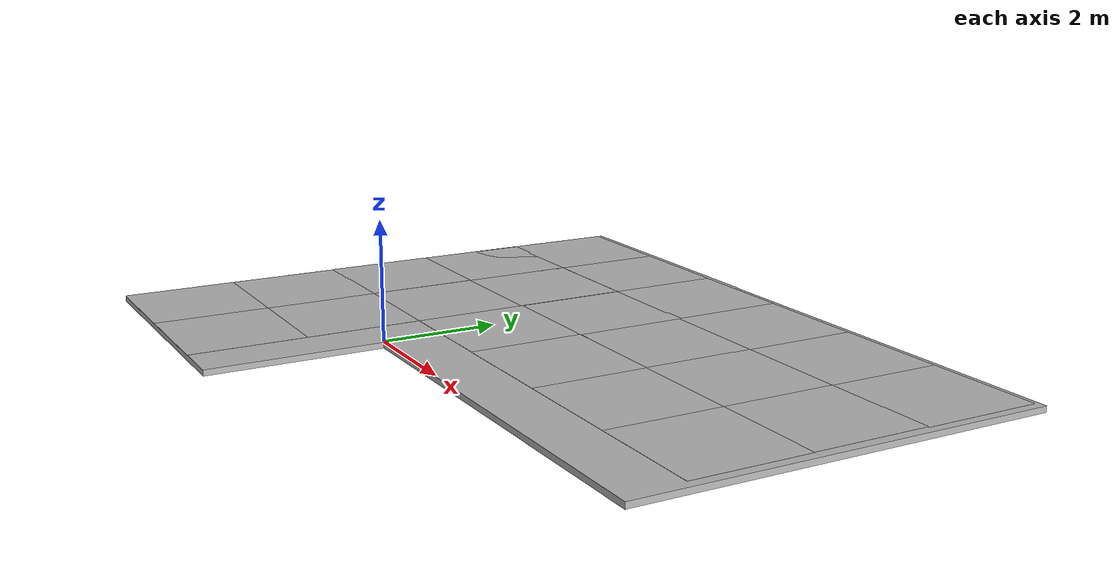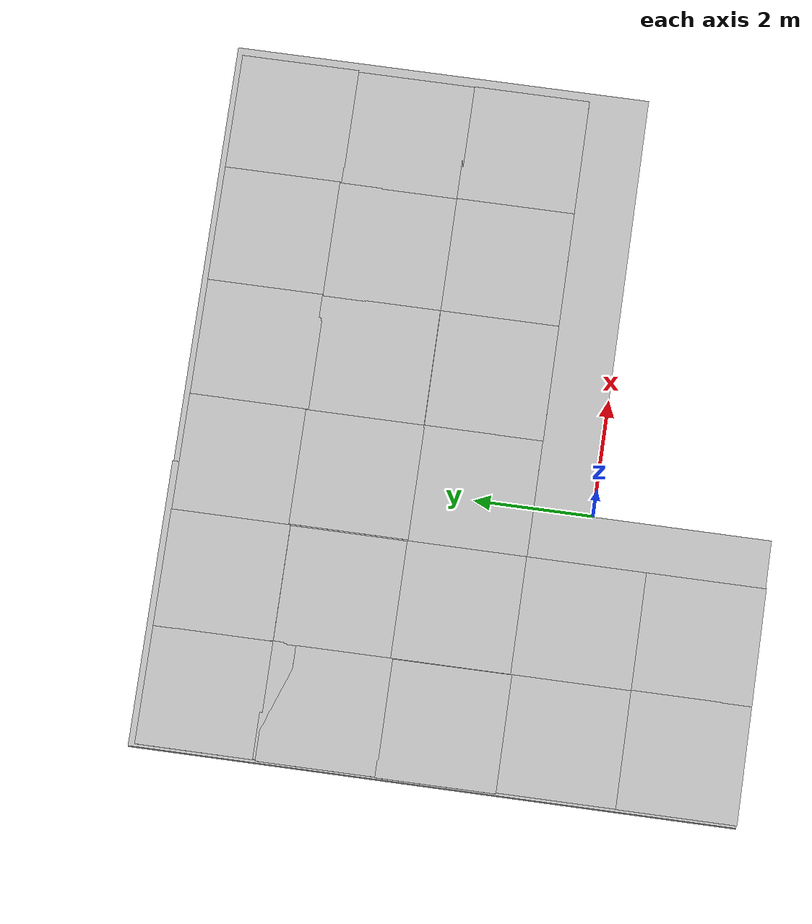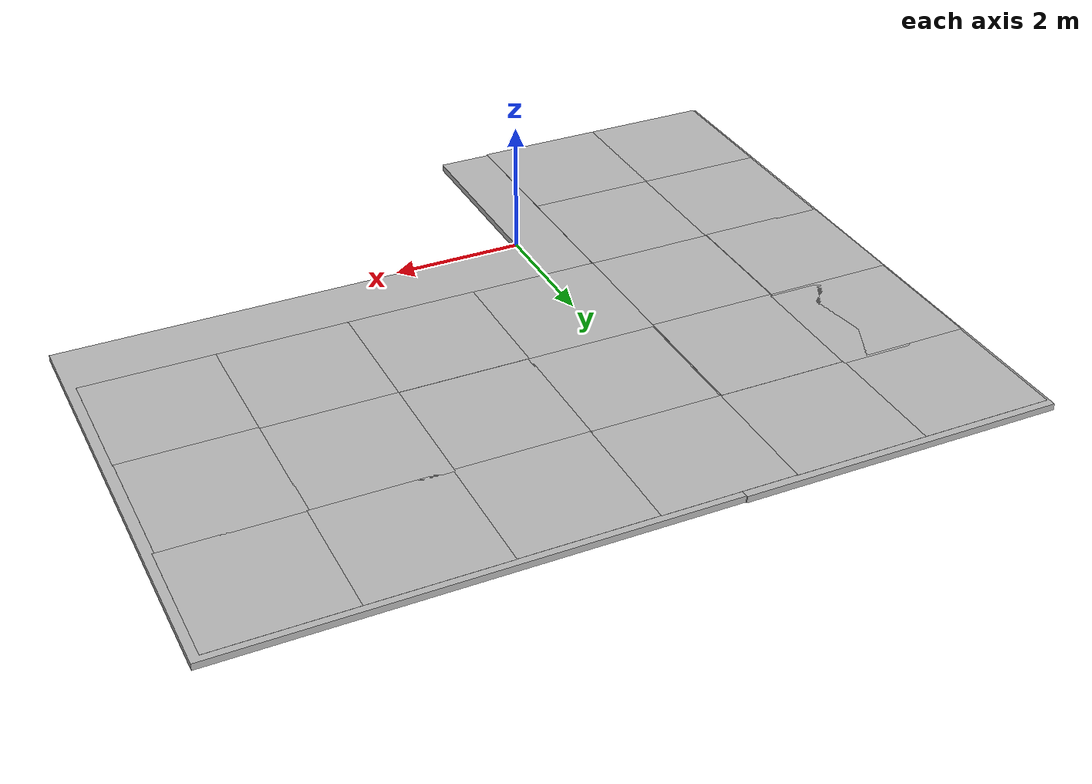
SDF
<sdf version="1.6">
 <world name="default">
  <light name="sun_light" type="directional">
   <pose>0 0 10 0 -0 0</pose>
   <diffuse>0.5 0.5 0.5 1</diffuse>
   <specular>0.1 0.1 0.1 1</specular>
   <direction>0.1 0.1 -0.9</direction>
   <attenuation>
    <range>20</range>
    <constant>0.5</constant>
    <linear>0.01</linear>
    <quadratic>0.001</quadratic>
   </attenuation>
  </light>
  <model name="ground_1">
   <static>1</static>
   <link name="link">
    <collision name="collision"><geometry><box><size>7.3 7.04 0.1</size></box></geometry></collision>
    <visual name="visual"><geometry><box><size>7.3 7.04 0.1</size></box></geometry></visual>
   </link>
   <pose>3.65 3.52 -0.06 0 -0 0</pose>
  </model>
  <model name="ground_2">
   <static>1</static>
   <link name="link">
    <collision name="collision"><geometry><box><size>4.85 10.04 0.1</size></box></geometry></collision>
    <visual name="visual"><geometry><box><size>4.85 10.04 0.1</size></box></geometry></visual>
   </link>
   <pose>-2.425 2.04 -0.06 0 -0 0</pose>
  </model>
  <gravity>0 0 -9.8</gravity>
  <magnetic_field>6e-06 2.3e-05 -4.2e-05</magnetic_field>
  <atmosphere type="adiabatic"/>
  <physics name="default_physics" default="0" type="ode">
   <max_step_size>0.001</max_step_size>
   <real_time_factor>1</real_time_factor>
   <real_time_update_rate>1000</real_time_update_rate>
  </physics>
  <scene><ambient>0.4 0.4 0.4 1</ambient><background>0.7 0.7 0.7 1</background><shadows>1</shadows></scene>
  <spherical_coordinates>
   <surface_model>EARTH_WGS84</surface_model>
   <latitude_deg>0</latitude_deg>
   <longitude_deg>0</longitude_deg>
   <elevation>0</elevation>
   <heading_deg>0</heading_deg>
  </spherical_coordinates>
  <model name="Tile/0-2">
   <static>1</static>
   <link name="link">
    <collision name="collision">
     <geometry><plane><normal>0 0 1</normal><size>2 2</size></plane></geometry>
     <surface><friction><ode><mu>100</mu><mu2>50</mu2></ode></friction></surface>
    </collision>
    <visual name="visual">
     <cast_shadows>0</cast_shadows>
     <geometry><plane><normal>0 0 1</normal><size>2 2</size></plane></geometry>
     <material>
      <script>
       <uri>model://modular_test_track/materials/scripts</uri>
       <uri>model://modular_test_track/materials/textures</uri>
       <name>Tile/d1104a1ce1c2a4da575261043327b8a6f88bc21e4f3d2a2efc81f7464eb275b9</name>
      </script>
     </material>
    </visual>
   </link>
   <pose>-3.81014 -1.99201 0 0 -0 0</pose>
  </model>
  <model name="Tile/2-0">
   <static>1</static>
   <link name="link">
    <collision name="collision">
     <geometry><plane><normal>0 0 1</normal><size>2 2</size></plane></geometry>
     <surface><friction><ode><mu>100</mu><mu2>50</mu2></ode></friction></surface>
    </collision>
    <visual name="visual">
     <cast_shadows>0</cast_shadows>
     <geometry><plane><normal>0 0 1</normal><size>2 2</size></plane></geometry>
     <material>
      <script>
       <uri>model://modular_test_track/materials/scripts</uri>
       <uri>model://modular_test_track/materials/textures</uri>
       <name>Tile/14e3d85895e79413dab1ea113f144297a9f2d131d73825067e3ddf7c9754889d</name>
      </script>
     </material>
    </visual>
   </link>
   <pose>-1.81831 -1.99341 0 0 -0 0</pose>
  </model>
  <model name="Tile/2-1">
   <static>1</static>
   <link name="link">
    <collision name="collision">
     <geometry><plane><normal>0 0 1</normal><size>2 2</size></plane></geometry>
     <surface><friction><ode><mu>100</mu><mu2>50</mu2></ode></friction></surface>
    </collision>
    <visual name="visual">
     <cast_shadows>0</cast_shadows>
     <geometry><plane><normal>0 0 1</normal><size>2 2</size></plane></geometry>
     <material>
      <script>
       <uri>model://modular_test_track/materials/scripts</uri>
       <uri>model://modular_test_track/materials/textures</uri>
       <name>Tile/9e39a20132603ff754673dedcad757b2602740de21a762e9342953b9dd3b0794</name>
      </script>
     </material>
    </visual>
   </link>
   <pose>-3.806 0.005757 0 0 -0 0</pose>
  </model>
  <model name="Tile/2-1_2">
   <static>1</static>
   <link name="link">
    <collision name="collision">
     <geometry><plane><normal>0 0 1</normal><size>2 2</size></plane></geometry>
     <surface><friction><ode><mu>100</mu><mu2>50</mu2></ode></friction></surface>
    </collision>
    <visual name="visual">
     <cast_shadows>0</cast_shadows>
     <geometry><plane><normal>0 0 1</normal><size>2 2</size></plane></geometry>
     <material>
      <script>
       <uri>model://modular_test_track/materials/scripts</uri>
       <uri>model://modular_test_track/materials/textures</uri>
       <name>Tile/9e39a20132603ff754673dedcad757b2602740de21a762e9342953b9dd3b0794</name>
      </script>
     </material>
    </visual>
   </link>
   <pose>-1.81961 0.005757 0 0 -0 0</pose>
  </model>
  <model name="Tile/2-1_3">
   <static>1</static>
   <link name="link">
    <collision name="collision">
     <geometry><plane><normal>0 0 1</normal><size>2 2</size></plane></geometry>
     <surface><friction><ode><mu>100</mu><mu2>50</mu2></ode></friction></surface>
    </collision>
    <visual name="visual">
     <cast_shadows>0</cast_shadows>
     <geometry><plane><normal>0 0 1</normal><size>2 2</size></plane></geometry>
     <material>
      <script>
       <uri>model://modular_test_track/materials/scripts</uri>
       <uri>model://modular_test_track/materials/textures</uri>
       <name>Tile/9e39a20132603ff754673dedcad757b2602740de21a762e9342953b9dd3b0794</name>
      </script>
     </material>
    </visual>
   </link>
   <pose>-1.82755 3.95469 0 0 -0 0</pose>
  </model>
  <model name="Tile/1-2">
   <static>1</static>
   <link name="link">
    <collision name="collision">
     <geometry><plane><normal>0 0 1</normal><size>2 2</size></plane></geometry>
     <surface><friction><ode><mu>100</mu><mu2>50</mu2></ode></friction></surface>
    </collision>
    <visual name="visual">
     <cast_shadows>0</cast_shadows>
     <geometry><plane><normal>0 0 1</normal><size>2 2</size></plane></geometry>
     <material>
      <script>
       <uri>model://modular_test_track/materials/scripts</uri>
       <uri>model://modular_test_track/materials/textures</uri>
       <name>Tile/d95b1beaf9154856c16c2c7feacb608d804b5b73fcb1ef02092da70ff405852c</name>
      </script>
     </material>
    </visual>
   </link>
   <pose>0.182643 5.94902 0 0 -0 0</pose>
  </model>
  <model name="Tile/1-3_0">
   <static>1</static>
   <link name="link">
    <collision name="collision">
     <geometry><plane><normal>0 0 1</normal><size>2 2</size></plane></geometry>
     <surface><friction><ode><mu>100</mu><mu2>50</mu2></ode></friction></surface>
    </collision>
    <visual name="visual">
     <cast_shadows>0</cast_shadows>
     <geometry><plane><normal>0 0 1</normal><size>2 2</size></plane></geometry>
     <material>
      <script>
       <uri>model://modular_test_track/materials/scripts</uri>
       <uri>model://modular_test_track/materials/textures</uri>
       <name>Tile/ea4bf34c12cc218ae3ecb0cc86ad9d59a347c1d60be179ea03a22039612968f1</name>
      </script>
     </material>
    </visual>
   </link>
   <pose>-1.81961 2.00008 0 0 -0 0</pose>
  </model>
  <model name="Tile/0-3">
   <static>1</static>
   <link name="link">
    <collision name="collision">
     <geometry><plane><normal>0 0 1</normal><size>2 2</size></plane></geometry>
     <surface><friction><ode><mu>100</mu><mu2>50</mu2></ode></friction></surface>
    </collision>
    <visual name="visual">
     <cast_shadows>0</cast_shadows>
     <geometry><plane><normal>0 0 1</normal><size>2 2</size></plane></geometry>
     <material>
      <script>
       <uri>model://modular_test_track/materials/scripts</uri>
       <uri>model://modular_test_track/materials/textures</uri>
       <name>Tile/2a477a2058ff16b04aac33a033b522f2c73191322214506ef664d16f9345dd9e</name>
      </script>
     </material>
    </visual>
   </link>
   <pose>-3.806 5.95697 0 0 -0 0</pose>
  </model>
  <model name="Tile/1-3_1">
   <static>1</static>
   <link name="link">
    <collision name="collision">
     <geometry><plane><normal>0 0 1</normal><size>2 2</size></plane></geometry>
     <surface><friction><ode><mu>100</mu><mu2>50</mu2></ode></friction></surface>
    </collision>
    <visual name="visual">
     <cast_shadows>0</cast_shadows>
     <geometry><plane><normal>0 0 1</normal><size>2 2</size></plane></geometry>
     <material>
      <script>
       <uri>model://modular_test_track/materials/scripts</uri>
       <uri>model://modular_test_track/materials/textures</uri>
       <name>Tile/ea4bf34c12cc218ae3ecb0cc86ad9d59a347c1d60be179ea03a22039612968f1</name>
      </script>
     </material>
    </visual>
   </link>
   <pose>-1.81167 5.95697 0 0 -0 0</pose>
  </model>
  <model name="Tile/2-3">
   <static>1</static>
   <link name="link">
    <collision name="collision">
     <geometry><plane><normal>0 0 1</normal><size>2 2</size></plane></geometry>
     <surface><friction><ode><mu>100</mu><mu2>50</mu2></ode></friction></surface>
    </collision>
    <visual name="visual">
     <cast_shadows>0</cast_shadows>
     <geometry><plane><normal>0 0 1</normal><size>2 2</size></plane></geometry>
     <material>
      <script>
       <uri>model://modular_test_track/materials/scripts</uri>
       <uri>model://modular_test_track/materials/textures</uri>
       <name>Tile/468509e67dcb05855ad2fccd9ecd6141526807bce1591ae1e5246dd62e041c67</name>
      </script>
     </material>
    </visual>
   </link>
   <pose>-3.82685 1.98 0 0 -0 1.5725</pose>
  </model>
  <model name="Tile/3-3">
   <static>1</static>
   <link name="link">
    <collision name="collision">
     <geometry><plane><normal>0 0 1</normal><size>2 2</size></plane></geometry>
     <surface><friction><ode><mu>100</mu><mu2>50</mu2></ode></friction></surface>
    </collision>
    <visual name="visual">
     <cast_shadows>0</cast_shadows>
     <geometry><plane><normal>0 0 1</normal><size>2 2</size></plane></geometry>
     <material>
      <script>
       <uri>model://modular_test_track/materials/scripts</uri>
       <uri>model://modular_test_track/materials/textures</uri>
       <name>Tile/06273d3443b62aefe77475956a89e546588de7e1f9bd3cbeb786d00ae6ec653c</name>
      </script>
     </material>
    </visual>
   </link>
   <pose>-3.82027 3.96098 0 0 -0 1.5725</pose>
  </model>
  <model name="Tile/1-2_0">
   <static>1</static>
   <link name="link">
    <collision name="collision">
     <geometry><plane><normal>0 0 1</normal><size>2 2</size></plane></geometry>
     <surface><friction><ode><mu>100</mu><mu2>50</mu2></ode></friction></surface>
    </collision>
    <visual name="visual">
     <cast_shadows>0</cast_shadows>
     <geometry><plane><normal>0 0 1</normal><size>2 2</size></plane></geometry>
     <material>
      <script>
       <uri>model://modular_test_track/materials/scripts</uri>
       <uri>model://modular_test_track/materials/textures</uri>
       <name>Tile/d95b1beaf9154856c16c2c7feacb608d804b5b73fcb1ef02092da70ff405852c</name>
      </script>
     </material>
    </visual>
   </link>
   <pose>0.173814 1.9985 0 0 -0 0</pose>
  </model>
  <model name="Tile/1-2_1">
   <static>1</static>
   <link name="link">
    <collision name="collision">
     <geometry><plane><normal>0 0 1</normal><size>2 2</size></plane></geometry>
     <surface><friction><ode><mu>100</mu><mu2>50</mu2></ode></friction></surface>
    </collision>
    <visual name="visual">
     <cast_shadows>0</cast_shadows>
     <geometry><plane><normal>0 0 1</normal><size>2 2</size></plane></geometry>
     <material>
      <script>
       <uri>model://modular_test_track/materials/scripts</uri>
       <uri>model://modular_test_track/materials/textures</uri>
       <name>Tile/d95b1beaf9154856c16c2c7feacb608d804b5b73fcb1ef02092da70ff405852c</name>
      </script>
     </material>
    </visual>
   </link>
   <pose>2.17912 5.94382 0 0 -0 0</pose>
  </model>
  <model name="Tile/0-3_0">
   <static>1</static>
   <link name="link">
    <collision name="collision">
     <geometry><plane><normal>0 0 1</normal><size>2 2</size></plane></geometry>
     <surface><friction><ode><mu>100</mu><mu2>50</mu2></ode></friction></surface>
    </collision>
    <visual name="visual">
     <cast_shadows>0</cast_shadows>
     <geometry><plane><normal>0 0 1</normal><size>2 2</size></plane></geometry>
     <material>
      <script>
       <uri>model://modular_test_track/materials/scripts</uri>
       <uri>model://modular_test_track/materials/textures</uri>
       <name>Tile/2a477a2058ff16b04aac33a033b522f2c73191322214506ef664d16f9345dd9e</name>
      </script>
     </material>
    </visual>
   </link>
   <pose>2.17017 3.99828 0 0 -0 0</pose>
  </model>
  <model name="Tile/2-0_0">
   <static>1</static>
   <link name="link">
    <collision name="collision">
     <geometry><plane><normal>0 0 1</normal><size>2 2</size></plane></geometry>
     <surface><friction><ode><mu>100</mu><mu2>50</mu2></ode></friction></surface>
    </collision>
    <visual name="visual">
     <cast_shadows>0</cast_shadows>
     <geometry><plane><normal>0 0 1</normal><size>2 2</size></plane></geometry>
     <material>
      <script>
       <uri>model://modular_test_track/materials/scripts</uri>
       <uri>model://modular_test_track/materials/textures</uri>
       <name>Tile/14e3d85895e79413dab1ea113f144297a9f2d131d73825067e3ddf7c9754889d</name>
      </script>
     </material>
    </visual>
   </link>
   <pose>2.17017 1.99295 0 0 -0 0</pose>
  </model>
  <model name="Tile/0-2_0">
   <static>1</static>
   <link name="link">
    <collision name="collision">
     <geometry><plane><normal>0 0 1</normal><size>2 2</size></plane></geometry>
     <surface><friction><ode><mu>100</mu><mu2>50</mu2></ode></friction></surface>
    </collision>
    <visual name="visual">
     <cast_shadows>0</cast_shadows>
     <geometry><plane><normal>0 0 1</normal><size>2 2</size></plane></geometry>
     <material>
      <script>
       <uri>model://modular_test_track/materials/scripts</uri>
       <uri>model://modular_test_track/materials/textures</uri>
       <name>Tile/d1104a1ce1c2a4da575261043327b8a6f88bc21e4f3d2a2efc81f7464eb275b9</name>
      </script>
     </material>
    </visual>
   </link>
   <pose>4.15681 1.99295 0 0 -0 0</pose>
  </model>
  <model name="Tile/1-2_2">
   <static>1</static>
   <link name="link">
    <collision name="collision">
     <geometry><plane><normal>0 0 1</normal><size>2 2</size></plane></geometry>
     <surface><friction><ode><mu>100</mu><mu2>50</mu2></ode></friction></surface>
    </collision>
    <visual name="visual">
     <cast_shadows>0</cast_shadows>
     <geometry><plane><normal>0 0 1</normal><size>2 2</size></plane></geometry>
     <material>
      <script>
       <uri>model://modular_test_track/materials/scripts</uri>
       <uri>model://modular_test_track/materials/textures</uri>
       <name>Tile/d95b1beaf9154856c16c2c7feacb608d804b5b73fcb1ef02092da70ff405852c</name>
      </script>
     </material>
    </visual>
   </link>
   <pose>4.17545 5.94761 0 0 -0 0</pose>
  </model>
  <model name="Tile/1-3">
   <static>1</static>
   <link name="link">
    <collision name="collision">
     <geometry><plane><normal>0 0 1</normal><size>2 2</size></plane></geometry>
     <surface><friction><ode><mu>100</mu><mu2>50</mu2></ode></friction></surface>
    </collision>
    <visual name="visual">
     <cast_shadows>0</cast_shadows>
     <geometry><plane><normal>0 0 1</normal><size>2 2</size></plane></geometry>
     <material>
      <script>
       <uri>model://modular_test_track/materials/scripts</uri>
       <uri>model://modular_test_track/materials/textures</uri>
       <name>Tile/ea4bf34c12cc218ae3ecb0cc86ad9d59a347c1d60be179ea03a22039612968f1</name>
      </script>
     </material>
    </visual>
   </link>
   <pose>4.15681 3.98893 0 0 -0 0</pose>
  </model>
  <model name="Tile/2-0_1">
   <static>1</static>
   <link name="link">
    <collision name="collision">
     <geometry><plane><normal>0 0 1</normal><size>2 2</size></plane></geometry>
     <surface><friction><ode><mu>100</mu><mu2>50</mu2></ode></friction></surface>
    </collision>
    <visual name="visual">
     <cast_shadows>0</cast_shadows>
     <geometry><plane><normal>0 0 1</normal><size>2 2</size></plane></geometry>
     <material>
      <script>
       <uri>model://modular_test_track/materials/scripts</uri>
       <uri>model://modular_test_track/materials/textures</uri>
       <name>Tile/14e3d85895e79413dab1ea113f144297a9f2d131d73825067e3ddf7c9754889d</name>
      </script>
     </material>
    </visual>
   </link>
   <pose>6.15283 1.99295 0 0 -0 0</pose>
  </model>
  <model name="Tile/2-2">
   <static>1</static>
   <link name="link">
    <collision name="collision">
     <geometry><plane><normal>0 0 1</normal><size>2 2</size></plane></geometry>
     <surface><friction><ode><mu>100</mu><mu2>50</mu2></ode></friction></surface>
    </collision>
    <visual name="visual">
     <cast_shadows>0</cast_shadows>
     <geometry><plane><normal>0 0 1</normal><size>2 2</size></plane></geometry>
     <material>
      <script>
       <uri>model://modular_test_track/materials/scripts</uri>
       <uri>model://modular_test_track/materials/textures</uri>
       <name>Tile/f803f96774846818d9b438ab886f218235cf7d0a546a34c70c1d692b1468e254</name>
      </script>
     </material>
    </visual>
   </link>
   <pose>6.17148 5.94761 0 0 -0 0</pose>
  </model>
  <model name="Tile/2-1_0">
   <static>1</static>
   <link name="link">
    <collision name="collision">
     <geometry><plane><normal>0 0 1</normal><size>2 2</size></plane></geometry>
     <surface><friction><ode><mu>100</mu><mu2>50</mu2></ode></friction></surface>
    </collision>
    <visual name="visual">
     <cast_shadows>0</cast_shadows>
     <geometry><plane><normal>0 0 1</normal><size>2 2</size></plane></geometry>
     <material>
      <script>
       <uri>model://modular_test_track/materials/scripts</uri>
       <uri>model://modular_test_track/materials/textures</uri>
       <name>Tile/9e39a20132603ff754673dedcad757b2602740de21a762e9342953b9dd3b0794</name>
      </script>
     </material>
    </visual>
   </link>
   <pose>6.1435 3.96096 0 0 -0 0</pose>
  </model>
  <model name="Tile/2-1_1">
   <static>1</static>
   <link name="link">
    <collision name="collision">
     <geometry><plane><normal>0 0 1</normal><size>2 2</size></plane></geometry>
     <surface><friction><ode><mu>100</mu><mu2>50</mu2></ode></friction></surface>
    </collision>
    <visual name="visual">
     <cast_shadows>0</cast_shadows>
     <geometry><plane><normal>0 0 1</normal><size>2 2</size></plane></geometry>
     <material>
      <script>
       <uri>model://modular_test_track/materials/scripts</uri>
       <uri>model://modular_test_track/materials/textures</uri>
       <name>Tile/9e39a20132603ff754673dedcad757b2602740de21a762e9342953b9dd3b0794</name>
      </script>
     </material>
    </visual>
   </link>
   <pose>0.193793 3.98782 0 0 -0 0</pose>
  </model>
  <model name="Tile/0-2_1">
   <static>1</static>
   <link name="link">
    <collision name="collision">
     <geometry><plane><normal>0 0 1</normal><size>2 2</size></plane></geometry>
     <surface><friction><ode><mu>100</mu><mu2>50</mu2></ode></friction></surface>
    </collision>
    <visual name="visual">
     <cast_shadows>0</cast_shadows>
     <geometry><plane><normal>0 0 1</normal><size>2 2</size></plane></geometry>
     <material>
      <script>
       <uri>model://modular_test_track/materials/scripts</uri>
       <uri>model://modular_test_track/materials/textures</uri>
       <name>Tile/d1104a1ce1c2a4da575261043327b8a6f88bc21e4f3d2a2efc81f7464eb275b9</name>
      </script>
     </material>
    </visual>
   </link>
   <pose>-3.79475 4.00301 0 0 -0 0</pose>
  </model>
 </world>
</sdf>
